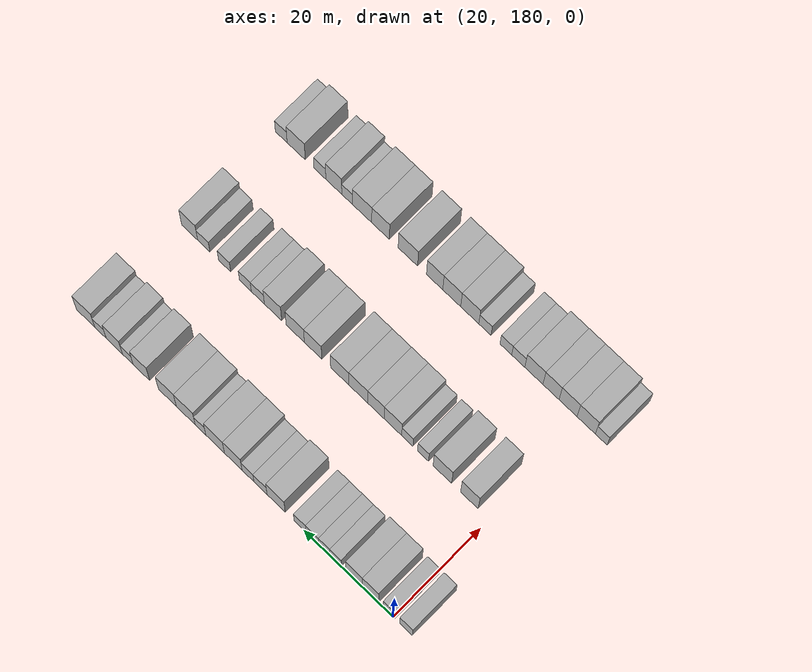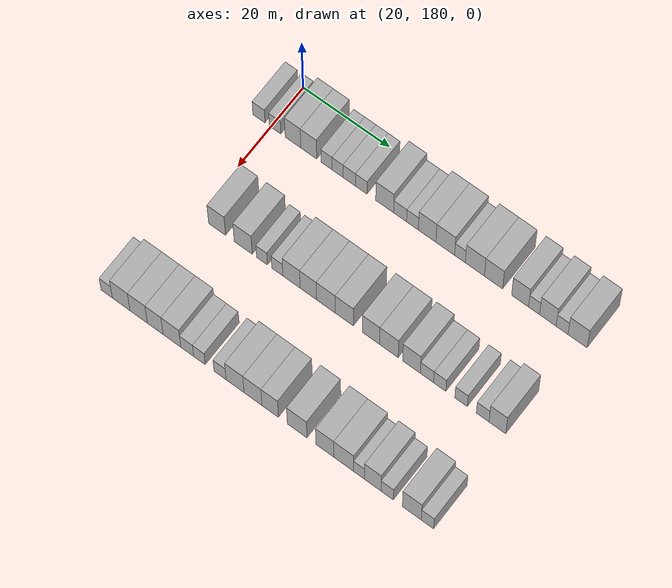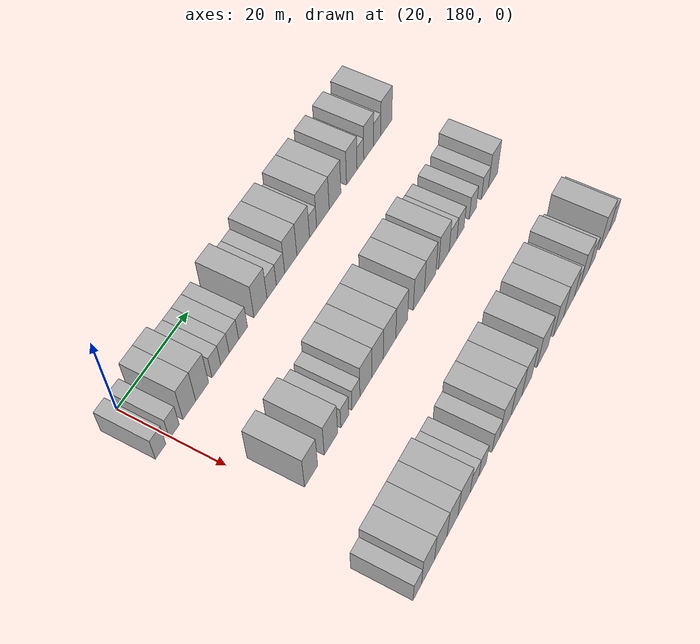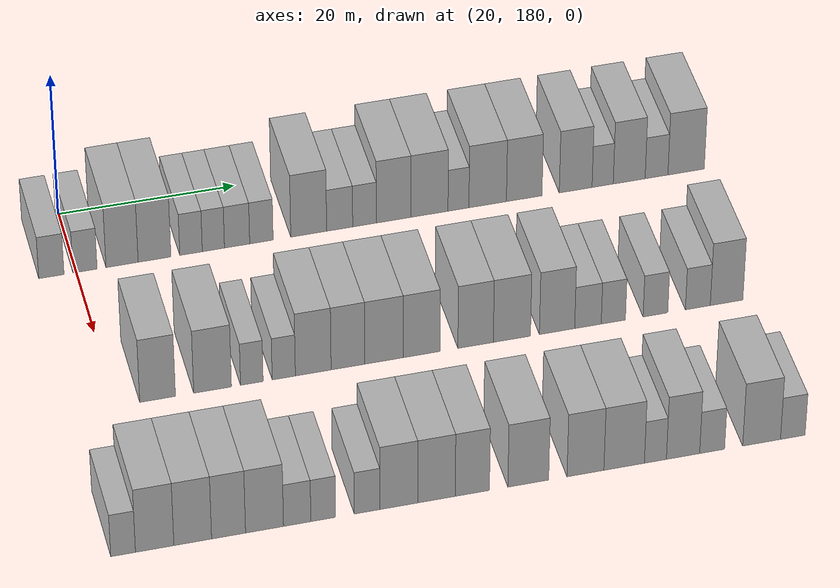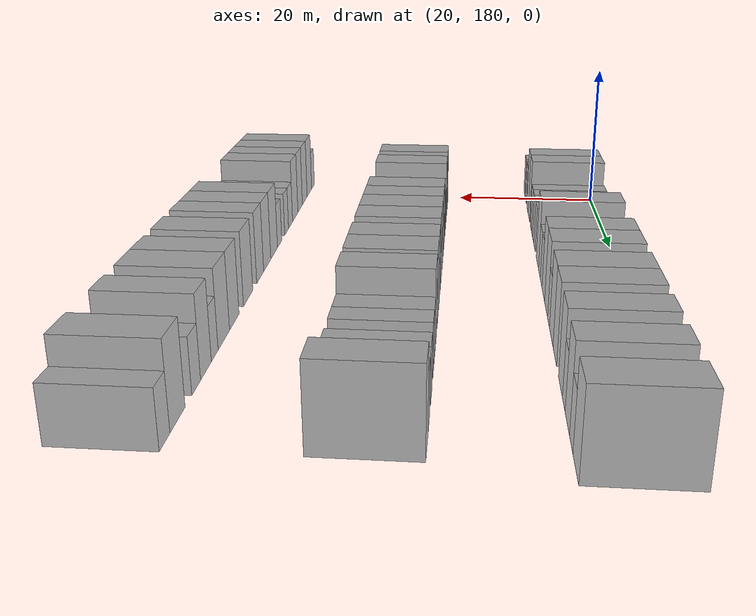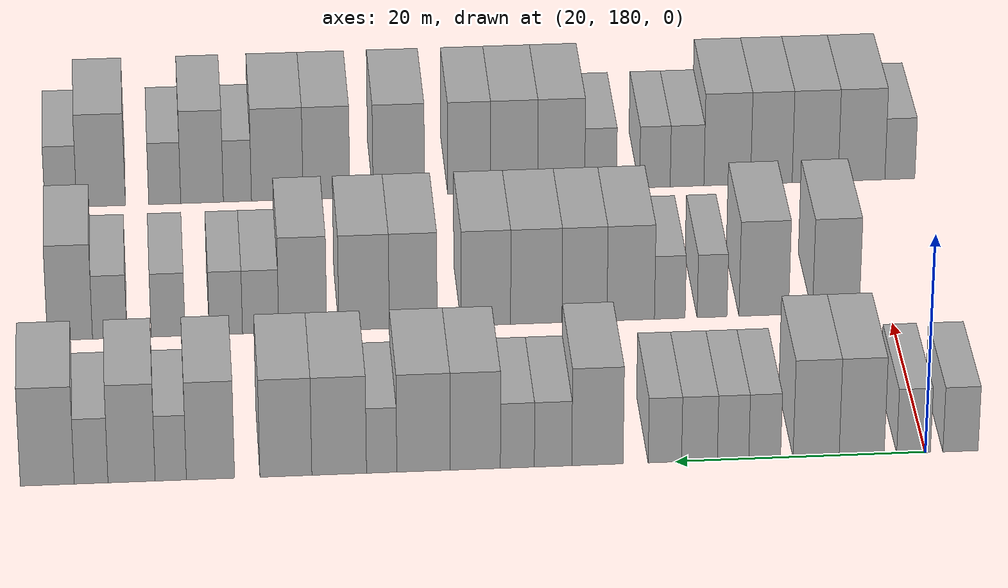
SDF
<sdf version="1.6">
 <world name="default">
  <model name="building_114">
   <static>1</static>
   <pose>25.0000 177.2299 0 0.000000 0.000000 0.000000</pose>
   <link name="link">
    <pose>0 0 3.00 0 0 0</pose>
    <collision name="collision"><geometry><box><size>10.0000 2.8217 6.0000</size></box></geometry></collision>
    <visual name="visual">
     <cast_shadows>0</cast_shadows>
     <geometry><box><size>10.0000 2.8217 6.0000</size></box></geometry>
     <material>
      <script>
       <uri>model://HANNAS_wall/materials/scripts</uri>
       <uri>model://HANNAS_wall/materials/textures</uri>
       <name>vrc/HANNAS_wall</name>
      </script>
     </material>
    </visual>
   </link>
  </model>
  <model name="building_115">
   <static>1</static>
   <pose>25.0000 180.9914 0 0.000000 0.000000 0.000000</pose>
   <link name="link">
    <pose>0 0 3.00 0 0 0</pose>
    <collision name="collision"><geometry><box><size>10.0000 2.7013 6.0000</size></box></geometry></collision>
    <visual name="visual">
     <cast_shadows>0</cast_shadows>
     <geometry><box><size>10.0000 2.7013 6.0000</size></box></geometry>
     <material>
      <script>
       <uri>model://HANNAS_wall/materials/scripts</uri>
       <uri>model://HANNAS_wall/materials/textures</uri>
       <name>vrc/HANNAS_wall</name>
      </script>
     </material>
    </visual>
   </link>
  </model>
  <model name="building_116">
   <static>1</static>
   <pose>25.0000 185.1468 0 0.000000 0.000000 0.000000</pose>
   <link name="link">
    <pose>0 0 4.50 0 0 0</pose>
    <collision name="collision"><geometry><box><size>10.0000 3.6094 9.0000</size></box></geometry></collision>
    <visual name="visual">
     <cast_shadows>0</cast_shadows>
     <geometry><box><size>10.0000 3.6094 9.0000</size></box></geometry>
     <material>
      <script>
       <uri>model://HANNAS_wall/materials/scripts</uri>
       <uri>model://HANNAS_wall/materials/textures</uri>
       <name>vrc/HANNAS_wall</name>
      </script>
     </material>
    </visual>
   </link>
  </model>
  <model name="building_117">
   <static>1</static>
   <pose>25.0000 188.7937 0 0.000000 0.000000 0.000000</pose>
   <link name="link">
    <pose>0 0 4.50 0 0 0</pose>
    <collision name="collision"><geometry><box><size>10.0000 3.6845 9.0000</size></box></geometry></collision>
    <visual name="visual">
     <cast_shadows>0</cast_shadows>
     <geometry><box><size>10.0000 3.6845 9.0000</size></box></geometry>
     <material>
      <script>
       <uri>model://HANNAS_wall/materials/scripts</uri>
       <uri>model://HANNAS_wall/materials/textures</uri>
       <name>vrc/HANNAS_wall</name>
      </script>
     </material>
    </visual>
   </link>
  </model>
  <model name="building_118">
   <static>1</static>
   <pose>25.0000 192.9074 0 0.000000 0.000000 0.000000</pose>
   <link name="link">
    <pose>0 0 3.00 0 0 0</pose>
    <collision name="collision"><geometry><box><size>10.0000 2.5429 6.0000</size></box></geometry></collision>
    <visual name="visual">
     <cast_shadows>0</cast_shadows>
     <geometry><box><size>10.0000 2.5429 6.0000</size></box></geometry>
     <material>
      <script>
       <uri>model://HANNAS_wall/materials/scripts</uri>
       <uri>model://HANNAS_wall/materials/textures</uri>
       <name>vrc/HANNAS_wall</name>
      </script>
     </material>
    </visual>
   </link>
  </model>
  <model name="building_119">
   <static>1</static>
   <pose>25.0000 195.4322 0 0.000000 0.000000 0.000000</pose>
   <link name="link">
    <pose>0 0 3.00 0 0 0</pose>
    <collision name="collision"><geometry><box><size>10.0000 2.5067 6.0000</size></box></geometry></collision>
    <visual name="visual">
     <cast_shadows>0</cast_shadows>
     <geometry><box><size>10.0000 2.5067 6.0000</size></box></geometry>
     <material>
      <script>
       <uri>model://HANNAS_wall/materials/scripts</uri>
       <uri>model://HANNAS_wall/materials/textures</uri>
       <name>vrc/HANNAS_wall</name>
      </script>
     </material>
    </visual>
   </link>
  </model>
  <model name="building_120">
   <static>1</static>
   <pose>25.0000 198.1139 0 0.000000 0.000000 0.000000</pose>
   <link name="link">
    <pose>0 0 3.00 0 0 0</pose>
    <collision name="collision"><geometry><box><size>10.0000 2.8567 6.0000</size></box></geometry></collision>
    <visual name="visual">
     <cast_shadows>0</cast_shadows>
     <geometry><box><size>10.0000 2.8567 6.0000</size></box></geometry>
     <material>
      <script>
       <uri>model://HANNAS_wall/materials/scripts</uri>
       <uri>model://HANNAS_wall/materials/textures</uri>
       <name>vrc/HANNAS_wall</name>
      </script>
     </material>
    </visual>
   </link>
  </model>
  <model name="building_121">
   <static>1</static>
   <pose>25.0000 200.8717 0 0.000000 0.000000 0.000000</pose>
   <link name="link">
    <pose>0 0 3.00 0 0 0</pose>
    <collision name="collision"><geometry><box><size>10.0000 2.6587 6.0000</size></box></geometry></collision>
    <visual name="visual">
     <cast_shadows>0</cast_shadows>
     <geometry><box><size>10.0000 2.6587 6.0000</size></box></geometry>
     <material>
      <script>
       <uri>model://HANNAS_wall/materials/scripts</uri>
       <uri>model://HANNAS_wall/materials/textures</uri>
       <name>vrc/HANNAS_wall</name>
      </script>
     </material>
    </visual>
   </link>
  </model>
  <model name="building_122">
   <static>1</static>
   <pose>25.0000 206.2416 0 0.000000 0.000000 0.000000</pose>
   <link name="link">
    <pose>0 0 4.50 0 0 0</pose>
    <collision name="collision"><geometry><box><size>10.0000 4.0811 9.0000</size></box></geometry></collision>
    <visual name="visual">
     <cast_shadows>0</cast_shadows>
     <geometry><box><size>10.0000 4.0811 9.0000</size></box></geometry>
     <material>
      <script>
       <uri>model://HANNAS_wall/materials/scripts</uri>
       <uri>model://HANNAS_wall/materials/textures</uri>
       <name>vrc/HANNAS_wall</name>
      </script>
     </material>
    </visual>
   </link>
  </model>
  <model name="building_123">
   <static>1</static>
   <pose>25.0000 209.7693 0 0.000000 0.000000 0.000000</pose>
   <link name="link">
    <pose>0 0 3.00 0 0 0</pose>
    <collision name="collision"><geometry><box><size>10.0000 2.9743 6.0000</size></box></geometry></collision>
    <visual name="visual">
     <cast_shadows>0</cast_shadows>
     <geometry><box><size>10.0000 2.9743 6.0000</size></box></geometry>
     <material>
      <script>
       <uri>model://HANNAS_wall/materials/scripts</uri>
       <uri>model://HANNAS_wall/materials/textures</uri>
       <name>vrc/HANNAS_wall</name>
      </script>
     </material>
    </visual>
   </link>
  </model>
  <model name="building_124">
   <static>1</static>
   <pose>25.0000 212.6050 0 0.000000 0.000000 0.000000</pose>
   <link name="link">
    <pose>0 0 3.00 0 0 0</pose>
    <collision name="collision"><geometry><box><size>10.0000 2.6970 6.0000</size></box></geometry></collision>
    <visual name="visual">
     <cast_shadows>0</cast_shadows>
     <geometry><box><size>10.0000 2.6970 6.0000</size></box></geometry>
     <material>
      <script>
       <uri>model://HANNAS_wall/materials/scripts</uri>
       <uri>model://HANNAS_wall/materials/textures</uri>
       <name>vrc/HANNAS_wall</name>
      </script>
     </material>
    </visual>
   </link>
  </model>
  <model name="building_125">
   <static>1</static>
   <pose>25.0000 215.9416 0 0.000000 0.000000 0.000000</pose>
   <link name="link">
    <pose>0 0 4.50 0 0 0</pose>
    <collision name="collision"><geometry><box><size>10.0000 3.9762 9.0000</size></box></geometry></collision>
    <visual name="visual">
     <cast_shadows>0</cast_shadows>
     <geometry><box><size>10.0000 3.9762 9.0000</size></box></geometry>
     <material>
      <script>
       <uri>model://HANNAS_wall/materials/scripts</uri>
       <uri>model://HANNAS_wall/materials/textures</uri>
       <name>vrc/HANNAS_wall</name>
      </script>
     </material>
    </visual>
   </link>
  </model>
  <model name="building_126">
   <static>1</static>
   <pose>25.0000 220.0505 0 0.000000 0.000000 0.000000</pose>
   <link name="link">
    <pose>0 0 4.50 0 0 0</pose>
    <collision name="collision"><geometry><box><size>10.0000 4.2416 9.0000</size></box></geometry></collision>
    <visual name="visual">
     <cast_shadows>0</cast_shadows>
     <geometry><box><size>10.0000 4.2416 9.0000</size></box></geometry>
     <material>
      <script>
       <uri>model://HANNAS_wall/materials/scripts</uri>
       <uri>model://HANNAS_wall/materials/textures</uri>
       <name>vrc/HANNAS_wall</name>
      </script>
     </material>
    </visual>
   </link>
  </model>
  <model name="building_127">
   <static>1</static>
   <pose>25.0000 223.3737 0 0.000000 0.000000 0.000000</pose>
   <link name="link">
    <pose>0 0 3.00 0 0 0</pose>
    <collision name="collision"><geometry><box><size>10.0000 2.4049 6.0000</size></box></geometry></collision>
    <visual name="visual">
     <cast_shadows>0</cast_shadows>
     <geometry><box><size>10.0000 2.4049 6.0000</size></box></geometry>
     <material>
      <script>
       <uri>model://HANNAS_wall/materials/scripts</uri>
       <uri>model://HANNAS_wall/materials/textures</uri>
       <name>vrc/HANNAS_wall</name>
      </script>
     </material>
    </visual>
   </link>
  </model>
  <model name="building_128">
   <static>1</static>
   <pose>25.0000 226.7390 0 0.000000 0.000000 0.000000</pose>
   <link name="link">
    <pose>0 0 4.50 0 0 0</pose>
    <collision name="collision"><geometry><box><size>10.0000 4.3258 9.0000</size></box></geometry></collision>
    <visual name="visual">
     <cast_shadows>0</cast_shadows>
     <geometry><box><size>10.0000 4.3258 9.0000</size></box></geometry>
     <material>
      <script>
       <uri>model://HANNAS_wall/materials/scripts</uri>
       <uri>model://HANNAS_wall/materials/textures</uri>
       <name>vrc/HANNAS_wall</name>
      </script>
     </material>
    </visual>
   </link>
  </model>
  <model name="building_129">
   <static>1</static>
   <pose>25.0000 230.9556 0 0.000000 0.000000 0.000000</pose>
   <link name="link">
    <pose>0 0 4.50 0 0 0</pose>
    <collision name="collision"><geometry><box><size>10.0000 4.1074 9.0000</size></box></geometry></collision>
    <visual name="visual">
     <cast_shadows>0</cast_shadows>
     <geometry><box><size>10.0000 4.1074 9.0000</size></box></geometry>
     <material>
      <script>
       <uri>model://HANNAS_wall/materials/scripts</uri>
       <uri>model://HANNAS_wall/materials/textures</uri>
       <name>vrc/HANNAS_wall</name>
      </script>
     </material>
    </visual>
   </link>
  </model>
  <model name="building_130">
   <static>1</static>
   <pose>25.0000 236.9119 0 0.000000 0.000000 0.000000</pose>
   <link name="link">
    <pose>0 0 4.50 0 0 0</pose>
    <collision name="collision"><geometry><box><size>10.0000 3.8053 9.0000</size></box></geometry></collision>
    <visual name="visual">
     <cast_shadows>0</cast_shadows>
     <geometry><box><size>10.0000 3.8053 9.0000</size></box></geometry>
     <material>
      <script>
       <uri>model://HANNAS_wall/materials/scripts</uri>
       <uri>model://HANNAS_wall/materials/textures</uri>
       <name>vrc/HANNAS_wall</name>
      </script>
     </material>
    </visual>
   </link>
  </model>
  <model name="building_131">
   <static>1</static>
   <pose>25.0000 240.0457 0 0.000000 0.000000 0.000000</pose>
   <link name="link">
    <pose>0 0 3.00 0 0 0</pose>
    <collision name="collision"><geometry><box><size>10.0000 2.4624 6.0000</size></box></geometry></collision>
    <visual name="visual">
     <cast_shadows>0</cast_shadows>
     <geometry><box><size>10.0000 2.4624 6.0000</size></box></geometry>
     <material>
      <script>
       <uri>model://HANNAS_wall/materials/scripts</uri>
       <uri>model://HANNAS_wall/materials/textures</uri>
       <name>vrc/HANNAS_wall</name>
      </script>
     </material>
    </visual>
   </link>
  </model>
  <model name="building_132">
   <static>1</static>
   <pose>25.0000 243.1356 0 0.000000 0.000000 0.000000</pose>
   <link name="link">
    <pose>0 0 4.50 0 0 0</pose>
    <collision name="collision"><geometry><box><size>10.0000 3.7173 9.0000</size></box></geometry></collision>
    <visual name="visual">
     <cast_shadows>0</cast_shadows>
     <geometry><box><size>10.0000 3.7173 9.0000</size></box></geometry>
     <material>
      <script>
       <uri>model://HANNAS_wall/materials/scripts</uri>
       <uri>model://HANNAS_wall/materials/textures</uri>
       <name>vrc/HANNAS_wall</name>
      </script>
     </material>
    </visual>
   </link>
  </model>
  <model name="building_133">
   <static>1</static>
   <pose>25.0000 246.3217 0 0.000000 0.000000 0.000000</pose>
   <link name="link">
    <pose>0 0 3.00 0 0 0</pose>
    <collision name="collision"><geometry><box><size>10.0000 2.6550 6.0000</size></box></geometry></collision>
    <visual name="visual">
     <cast_shadows>0</cast_shadows>
     <geometry><box><size>10.0000 2.6550 6.0000</size></box></geometry>
     <material>
      <script>
       <uri>model://HANNAS_wall/materials/scripts</uri>
       <uri>model://HANNAS_wall/materials/textures</uri>
       <name>vrc/HANNAS_wall</name>
      </script>
     </material>
    </visual>
   </link>
  </model>
  <model name="building_134">
   <static>1</static>
   <pose>25.0000 249.7720 0 0.000000 0.000000 0.000000</pose>
   <link name="link">
    <pose>0 0 4.50 0 0 0</pose>
    <collision name="collision"><geometry><box><size>10.0000 4.2457 9.0000</size></box></geometry></collision>
    <visual name="visual">
     <cast_shadows>0</cast_shadows>
     <geometry><box><size>10.0000 4.2457 9.0000</size></box></geometry>
     <material>
      <script>
       <uri>model://HANNAS_wall/materials/scripts</uri>
       <uri>model://HANNAS_wall/materials/textures</uri>
       <name>vrc/HANNAS_wall</name>
      </script>
     </material>
    </visual>
   </link>
  </model>
  <model name="building_232">
   <static>1</static>
   <pose>47.0000 184.4895 0 0.000000 0.000000 0.000000</pose>
   <link name="link">
    <pose>0 0 4.50 0 0 0</pose>
    <collision name="collision"><geometry><box><size>10.0000 3.9055 9.0000</size></box></geometry></collision>
    <visual name="visual">
     <cast_shadows>0</cast_shadows>
     <geometry><box><size>10.0000 3.9055 9.0000</size></box></geometry>
     <material>
      <script>
       <uri>model://HANNAS_wall/materials/scripts</uri>
       <uri>model://HANNAS_wall/materials/textures</uri>
       <name>vrc/HANNAS_wall</name>
      </script>
     </material>
    </visual>
   </link>
  </model>
  <model name="building_233">
   <static>1</static>
   <pose>47.0000 190.5099 0 0.000000 0.000000 0.000000</pose>
   <link name="link">
    <pose>0 0 4.50 0 0 0</pose>
    <collision name="collision"><geometry><box><size>10.0000 4.1352 9.0000</size></box></geometry></collision>
    <visual name="visual">
     <cast_shadows>0</cast_shadows>
     <geometry><box><size>10.0000 4.1352 9.0000</size></box></geometry>
     <material>
      <script>
       <uri>model://HANNAS_wall/materials/scripts</uri>
       <uri>model://HANNAS_wall/materials/textures</uri>
       <name>vrc/HANNAS_wall</name>
      </script>
     </material>
    </visual>
   </link>
  </model>
  <model name="building_234">
   <static>1</static>
   <pose>47.0000 194.8201 0 0.000000 0.000000 0.000000</pose>
   <link name="link">
    <pose>0 0 3.00 0 0 0</pose>
    <collision name="collision"><geometry><box><size>10.0000 2.4851 6.0000</size></box></geometry></collision>
    <visual name="visual">
     <cast_shadows>0</cast_shadows>
     <geometry><box><size>10.0000 2.4851 6.0000</size></box></geometry>
     <material>
      <script>
       <uri>model://HANNAS_wall/materials/scripts</uri>
       <uri>model://HANNAS_wall/materials/textures</uri>
       <name>vrc/HANNAS_wall</name>
      </script>
     </material>
    </visual>
   </link>
  </model>
  <model name="building_235">
   <static>1</static>
   <pose>47.0000 198.3404 0 0.000000 0.000000 0.000000</pose>
   <link name="link">
    <pose>0 0 3.00 0 0 0</pose>
    <collision name="collision"><geometry><box><size>10.0000 2.5553 6.0000</size></box></geometry></collision>
    <visual name="visual">
     <cast_shadows>0</cast_shadows>
     <geometry><box><size>10.0000 2.5553 6.0000</size></box></geometry>
     <material>
      <script>
       <uri>model://HANNAS_wall/materials/scripts</uri>
       <uri>model://HANNAS_wall/materials/textures</uri>
       <name>vrc/HANNAS_wall</name>
      </script>
     </material>
    </visual>
   </link>
  </model>
  <model name="building_236">
   <static>1</static>
   <pose>47.0000 201.5911 0 0.000000 0.000000 0.000000</pose>
   <link name="link">
    <pose>0 0 4.50 0 0 0</pose>
    <collision name="collision"><geometry><box><size>10.0000 3.9463 9.0000</size></box></geometry></collision>
    <visual name="visual">
     <cast_shadows>0</cast_shadows>
     <geometry><box><size>10.0000 3.9463 9.0000</size></box></geometry>
     <material>
      <script>
       <uri>model://HANNAS_wall/materials/scripts</uri>
       <uri>model://HANNAS_wall/materials/textures</uri>
       <name>vrc/HANNAS_wall</name>
      </script>
     </material>
    </visual>
   </link>
  </model>
  <model name="building_237">
   <static>1</static>
   <pose>47.0000 205.4345 0 0.000000 0.000000 0.000000</pose>
   <link name="link">
    <pose>0 0 4.50 0 0 0</pose>
    <collision name="collision"><geometry><box><size>10.0000 3.7404 9.0000</size></box></geometry></collision>
    <visual name="visual">
     <cast_shadows>0</cast_shadows>
     <geometry><box><size>10.0000 3.7404 9.0000</size></box></geometry>
     <material>
      <script>
       <uri>model://HANNAS_wall/materials/scripts</uri>
       <uri>model://HANNAS_wall/materials/textures</uri>
       <name>vrc/HANNAS_wall</name>
      </script>
     </material>
    </visual>
   </link>
  </model>
  <model name="building_238">
   <static>1</static>
   <pose>47.0000 209.4332 0 0.000000 0.000000 0.000000</pose>
   <link name="link">
    <pose>0 0 4.50 0 0 0</pose>
    <collision name="collision"><geometry><box><size>10.0000 4.2571 9.0000</size></box></geometry></collision>
    <visual name="visual">
     <cast_shadows>0</cast_shadows>
     <geometry><box><size>10.0000 4.2571 9.0000</size></box></geometry>
     <material>
      <script>
       <uri>model://HANNAS_wall/materials/scripts</uri>
       <uri>model://HANNAS_wall/materials/textures</uri>
       <name>vrc/HANNAS_wall</name>
      </script>
     </material>
    </visual>
   </link>
  </model>
  <model name="building_239">
   <static>1</static>
   <pose>47.0000 213.6060 0 0.000000 0.000000 0.000000</pose>
   <link name="link">
    <pose>0 0 4.50 0 0 0</pose>
    <collision name="collision"><geometry><box><size>10.0000 4.0884 9.0000</size></box></geometry></collision>
    <visual name="visual">
     <cast_shadows>0</cast_shadows>
     <geometry><box><size>10.0000 4.0884 9.0000</size></box></geometry>
     <material>
      <script>
       <uri>model://HANNAS_wall/materials/scripts</uri>
       <uri>model://HANNAS_wall/materials/textures</uri>
       <name>vrc/HANNAS_wall</name>
      </script>
     </material>
    </visual>
   </link>
  </model>
  <model name="building_240">
   <static>1</static>
   <pose>47.0000 219.6310 0 0.000000 0.000000 0.000000</pose>
   <link name="link">
    <pose>0 0 4.50 0 0 0</pose>
    <collision name="collision"><geometry><box><size>10.0000 3.9615 9.0000</size></box></geometry></collision>
    <visual name="visual">
     <cast_shadows>0</cast_shadows>
     <geometry><box><size>10.0000 3.9615 9.0000</size></box></geometry>
     <material>
      <script>
       <uri>model://HANNAS_wall/materials/scripts</uri>
       <uri>model://HANNAS_wall/materials/textures</uri>
       <name>vrc/HANNAS_wall</name>
      </script>
     </material>
    </visual>
   </link>
  </model>
  <model name="building_241">
   <static>1</static>
   <pose>47.0000 223.6928 0 0.000000 0.000000 0.000000</pose>
   <link name="link">
    <pose>0 0 4.50 0 0 0</pose>
    <collision name="collision"><geometry><box><size>10.0000 4.1621 9.0000</size></box></geometry></collision>
    <visual name="visual">
     <cast_shadows>0</cast_shadows>
     <geometry><box><size>10.0000 4.1621 9.0000</size></box></geometry>
     <material>
      <script>
       <uri>model://HANNAS_wall/materials/scripts</uri>
       <uri>model://HANNAS_wall/materials/textures</uri>
       <name>vrc/HANNAS_wall</name>
      </script>
     </material>
    </visual>
   </link>
  </model>
  <model name="building_242">
   <static>1</static>
   <pose>47.0000 228.7574 0 0.000000 0.000000 0.000000</pose>
   <link name="link">
    <pose>0 0 4.50 0 0 0</pose>
    <collision name="collision"><geometry><box><size>10.0000 3.9670 9.0000</size></box></geometry></collision>
    <visual name="visual">
     <cast_shadows>0</cast_shadows>
     <geometry><box><size>10.0000 3.9670 9.0000</size></box></geometry>
     <material>
      <script>
       <uri>model://HANNAS_wall/materials/scripts</uri>
       <uri>model://HANNAS_wall/materials/textures</uri>
       <name>vrc/HANNAS_wall</name>
      </script>
     </material>
    </visual>
   </link>
  </model>
  <model name="building_243">
   <static>1</static>
   <pose>47.0000 232.2382 0 0.000000 0.000000 0.000000</pose>
   <link name="link">
    <pose>0 0 3.00 0 0 0</pose>
    <collision name="collision"><geometry><box><size>10.0000 2.9946 6.0000</size></box></geometry></collision>
    <visual name="visual">
     <cast_shadows>0</cast_shadows>
     <geometry><box><size>10.0000 2.9946 6.0000</size></box></geometry>
     <material>
      <script>
       <uri>model://HANNAS_wall/materials/scripts</uri>
       <uri>model://HANNAS_wall/materials/textures</uri>
       <name>vrc/HANNAS_wall</name>
      </script>
     </material>
    </visual>
   </link>
  </model>
  <model name="building_244">
   <static>1</static>
   <pose>47.0000 235.0992 0 0.000000 0.000000 0.000000</pose>
   <link name="link">
    <pose>0 0 3.00 0 0 0</pose>
    <collision name="collision"><geometry><box><size>10.0000 2.7275 6.0000</size></box></geometry></collision>
    <visual name="visual">
     <cast_shadows>0</cast_shadows>
     <geometry><box><size>10.0000 2.7275 6.0000</size></box></geometry>
     <material>
      <script>
       <uri>model://HANNAS_wall/materials/scripts</uri>
       <uri>model://HANNAS_wall/materials/textures</uri>
       <name>vrc/HANNAS_wall</name>
      </script>
     </material>
    </visual>
   </link>
  </model>
  <model name="building_245">
   <static>1</static>
   <pose>47.0000 239.8606 0 0.000000 0.000000 0.000000</pose>
   <link name="link">
    <pose>0 0 3.00 0 0 0</pose>
    <collision name="collision"><geometry><box><size>10.0000 2.7951 6.0000</size></box></geometry></collision>
    <visual name="visual">
     <cast_shadows>0</cast_shadows>
     <geometry><box><size>10.0000 2.7951 6.0000</size></box></geometry>
     <material>
      <script>
       <uri>model://HANNAS_wall/materials/scripts</uri>
       <uri>model://HANNAS_wall/materials/textures</uri>
       <name>vrc/HANNAS_wall</name>
      </script>
     </material>
    </visual>
   </link>
  </model>
  <model name="building_246">
   <static>1</static>
   <pose>47.0000 244.6729 0 0.000000 0.000000 0.000000</pose>
   <link name="link">
    <pose>0 0 3.00 0 0 0</pose>
    <collision name="collision"><geometry><box><size>10.0000 2.8296 6.0000</size></box></geometry></collision>
    <visual name="visual">
     <cast_shadows>0</cast_shadows>
     <geometry><box><size>10.0000 2.8296 6.0000</size></box></geometry>
     <material>
      <script>
       <uri>model://HANNAS_wall/materials/scripts</uri>
       <uri>model://HANNAS_wall/materials/textures</uri>
       <name>vrc/HANNAS_wall</name>
      </script>
     </material>
    </visual>
   </link>
  </model>
  <model name="building_247">
   <static>1</static>
   <pose>47.0000 247.9388 0 0.000000 0.000000 0.000000</pose>
   <link name="link">
    <pose>0 0 4.50 0 0 0</pose>
    <collision name="collision"><geometry><box><size>10.0000 3.7022 9.0000</size></box></geometry></collision>
    <visual name="visual">
     <cast_shadows>0</cast_shadows>
     <geometry><box><size>10.0000 3.7022 9.0000</size></box></geometry>
     <material>
      <script>
       <uri>model://HANNAS_wall/materials/scripts</uri>
       <uri>model://HANNAS_wall/materials/textures</uri>
       <name>vrc/HANNAS_wall</name>
      </script>
     </material>
    </visual>
   </link>
  </model>
  <model name="building_355">
   <static>1</static>
   <pose>69.0000 176.1963 0 0.000000 0.000000 0.000000</pose>
   <link name="link">
    <pose>0 0 3.00 0 0 0</pose>
    <collision name="collision"><geometry><box><size>10.0000 2.6148 6.0000</size></box></geometry></collision>
    <visual name="visual">
     <cast_shadows>0</cast_shadows>
     <geometry><box><size>10.0000 2.6148 6.0000</size></box></geometry>
     <material>
      <script>
       <uri>model://HANNAS_wall/materials/scripts</uri>
       <uri>model://HANNAS_wall/materials/textures</uri>
       <name>vrc/HANNAS_wall</name>
      </script>
     </material>
    </visual>
   </link>
  </model>
  <model name="building_356">
   <static>1</static>
   <pose>69.0000 179.5372 0 0.000000 0.000000 0.000000</pose>
   <link name="link">
    <pose>0 0 4.50 0 0 0</pose>
    <collision name="collision"><geometry><box><size>10.0000 4.0669 9.0000</size></box></geometry></collision>
    <visual name="visual">
     <cast_shadows>0</cast_shadows>
     <geometry><box><size>10.0000 4.0669 9.0000</size></box></geometry>
     <material>
      <script>
       <uri>model://HANNAS_wall/materials/scripts</uri>
       <uri>model://HANNAS_wall/materials/textures</uri>
       <name>vrc/HANNAS_wall</name>
      </script>
     </material>
    </visual>
   </link>
  </model>
  <model name="building_357">
   <static>1</static>
   <pose>69.0000 183.5724 0 0.000000 0.000000 0.000000</pose>
   <link name="link">
    <pose>0 0 4.50 0 0 0</pose>
    <collision name="collision"><geometry><box><size>10.0000 4.0037 9.0000</size></box></geometry></collision>
    <visual name="visual">
     <cast_shadows>0</cast_shadows>
     <geometry><box><size>10.0000 4.0037 9.0000</size></box></geometry>
     <material>
      <script>
       <uri>model://HANNAS_wall/materials/scripts</uri>
       <uri>model://HANNAS_wall/materials/textures</uri>
       <name>vrc/HANNAS_wall</name>
      </script>
     </material>
    </visual>
   </link>
  </model>
  <model name="building_358">
   <static>1</static>
   <pose>69.0000 187.3822 0 0.000000 0.000000 0.000000</pose>
   <link name="link">
    <pose>0 0 4.50 0 0 0</pose>
    <collision name="collision"><geometry><box><size>10.0000 3.6160 9.0000</size></box></geometry></collision>
    <visual name="visual">
     <cast_shadows>0</cast_shadows>
     <geometry><box><size>10.0000 3.6160 9.0000</size></box></geometry>
     <material>
      <script>
       <uri>model://HANNAS_wall/materials/scripts</uri>
       <uri>model://HANNAS_wall/materials/textures</uri>
       <name>vrc/HANNAS_wall</name>
      </script>
     </material>
    </visual>
   </link>
  </model>
  <model name="building_359">
   <static>1</static>
   <pose>69.0000 191.2171 0 0.000000 0.000000 0.000000</pose>
   <link name="link">
    <pose>0 0 4.50 0 0 0</pose>
    <collision name="collision"><geometry><box><size>10.0000 4.0538 9.0000</size></box></geometry></collision>
    <visual name="visual">
     <cast_shadows>0</cast_shadows>
     <geometry><box><size>10.0000 4.0538 9.0000</size></box></geometry>
     <material>
      <script>
       <uri>model://HANNAS_wall/materials/scripts</uri>
       <uri>model://HANNAS_wall/materials/textures</uri>
       <name>vrc/HANNAS_wall</name>
      </script>
     </material>
    </visual>
   </link>
  </model>
  <model name="building_360">
   <static>1</static>
   <pose>69.0000 194.7058 0 0.000000 0.000000 0.000000</pose>
   <link name="link">
    <pose>0 0 3.00 0 0 0</pose>
    <collision name="collision"><geometry><box><size>10.0000 2.9237 6.0000</size></box></geometry></collision>
    <visual name="visual">
     <cast_shadows>0</cast_shadows>
     <geometry><box><size>10.0000 2.9237 6.0000</size></box></geometry>
     <material>
      <script>
       <uri>model://HANNAS_wall/materials/scripts</uri>
       <uri>model://HANNAS_wall/materials/textures</uri>
       <name>vrc/HANNAS_wall</name>
      </script>
     </material>
    </visual>
   </link>
  </model>
  <model name="building_361">
   <static>1</static>
   <pose>69.0000 197.4939 0 0.000000 0.000000 0.000000</pose>
   <link name="link">
    <pose>0 0 3.00 0 0 0</pose>
    <collision name="collision"><geometry><box><size>10.0000 2.6524 6.0000</size></box></geometry></collision>
    <visual name="visual">
     <cast_shadows>0</cast_shadows>
     <geometry><box><size>10.0000 2.6524 6.0000</size></box></geometry>
     <material>
      <script>
       <uri>model://HANNAS_wall/materials/scripts</uri>
       <uri>model://HANNAS_wall/materials/textures</uri>
       <name>vrc/HANNAS_wall</name>
      </script>
     </material>
    </visual>
   </link>
  </model>
  <model name="building_362">
   <static>1</static>
   <pose>69.0000 202.1973 0 0.000000 0.000000 0.000000</pose>
   <link name="link">
    <pose>0 0 3.00 0 0 0</pose>
    <collision name="collision"><geometry><box><size>10.0000 2.7544 6.0000</size></box></geometry></collision>
    <visual name="visual">
     <cast_shadows>0</cast_shadows>
     <geometry><box><size>10.0000 2.7544 6.0000</size></box></geometry>
     <material>
      <script>
       <uri>model://HANNAS_wall/materials/scripts</uri>
       <uri>model://HANNAS_wall/materials/textures</uri>
       <name>vrc/HANNAS_wall</name>
      </script>
     </material>
    </visual>
   </link>
  </model>
  <model name="building_363">
   <static>1</static>
   <pose>69.0000 205.6110 0 0.000000 0.000000 0.000000</pose>
   <link name="link">
    <pose>0 0 4.50 0 0 0</pose>
    <collision name="collision"><geometry><box><size>10.0000 4.0729 9.0000</size></box></geometry></collision>
    <visual name="visual">
     <cast_shadows>0</cast_shadows>
     <geometry><box><size>10.0000 4.0729 9.0000</size></box></geometry>
     <material>
      <script>
       <uri>model://HANNAS_wall/materials/scripts</uri>
       <uri>model://HANNAS_wall/materials/textures</uri>
       <name>vrc/HANNAS_wall</name>
      </script>
     </material>
    </visual>
   </link>
  </model>
  <model name="building_364">
   <static>1</static>
   <pose>69.0000 209.6789 0 0.000000 0.000000 0.000000</pose>
   <link name="link">
    <pose>0 0 4.50 0 0 0</pose>
    <collision name="collision"><geometry><box><size>10.0000 4.0629 9.0000</size></box></geometry></collision>
    <visual name="visual">
     <cast_shadows>0</cast_shadows>
     <geometry><box><size>10.0000 4.0629 9.0000</size></box></geometry>
     <material>
      <script>
       <uri>model://HANNAS_wall/materials/scripts</uri>
       <uri>model://HANNAS_wall/materials/textures</uri>
       <name>vrc/HANNAS_wall</name>
      </script>
     </material>
    </visual>
   </link>
  </model>
  <model name="building_365">
   <static>1</static>
   <pose>69.0000 213.5616 0 0.000000 0.000000 0.000000</pose>
   <link name="link">
    <pose>0 0 4.50 0 0 0</pose>
    <collision name="collision"><geometry><box><size>10.0000 3.7024 9.0000</size></box></geometry></collision>
    <visual name="visual">
     <cast_shadows>0</cast_shadows>
     <geometry><box><size>10.0000 3.7024 9.0000</size></box></geometry>
     <material>
      <script>
       <uri>model://HANNAS_wall/materials/scripts</uri>
       <uri>model://HANNAS_wall/materials/textures</uri>
       <name>vrc/HANNAS_wall</name>
      </script>
     </material>
    </visual>
   </link>
  </model>
  <model name="building_366">
   <static>1</static>
   <pose>69.0000 219.6311 0 0.000000 0.000000 0.000000</pose>
   <link name="link">
    <pose>0 0 4.50 0 0 0</pose>
    <collision name="collision"><geometry><box><size>10.0000 4.4367 9.0000</size></box></geometry></collision>
    <visual name="visual">
     <cast_shadows>0</cast_shadows>
     <geometry><box><size>10.0000 4.4367 9.0000</size></box></geometry>
     <material>
      <script>
       <uri>model://HANNAS_wall/materials/scripts</uri>
       <uri>model://HANNAS_wall/materials/textures</uri>
       <name>vrc/HANNAS_wall</name>
      </script>
     </material>
    </visual>
   </link>
  </model>
  <model name="building_367">
   <static>1</static>
   <pose>69.0000 225.8640 0 0.000000 0.000000 0.000000</pose>
   <link name="link">
    <pose>0 0 4.50 0 0 0</pose>
    <collision name="collision"><geometry><box><size>10.0000 4.0290 9.0000</size></box></geometry></collision>
    <visual name="visual">
     <cast_shadows>0</cast_shadows>
     <geometry><box><size>10.0000 4.0290 9.0000</size></box></geometry>
     <material>
      <script>
       <uri>model://HANNAS_wall/materials/scripts</uri>
       <uri>model://HANNAS_wall/materials/textures</uri>
       <name>vrc/HANNAS_wall</name>
      </script>
     </material>
    </visual>
   </link>
  </model>
  <model name="building_368">
   <static>1</static>
   <pose>69.0000 230.0979 0 0.000000 0.000000 0.000000</pose>
   <link name="link">
    <pose>0 0 4.50 0 0 0</pose>
    <collision name="collision"><geometry><box><size>10.0000 4.4389 9.0000</size></box></geometry></collision>
    <visual name="visual">
     <cast_shadows>0</cast_shadows>
     <geometry><box><size>10.0000 4.4389 9.0000</size></box></geometry>
     <material>
      <script>
       <uri>model://HANNAS_wall/materials/scripts</uri>
       <uri>model://HANNAS_wall/materials/textures</uri>
       <name>vrc/HANNAS_wall</name>
      </script>
     </material>
    </visual>
   </link>
  </model>
  <model name="building_369">
   <static>1</static>
   <pose>69.0000 233.5254 0 0.000000 0.000000 0.000000</pose>
   <link name="link">
    <pose>0 0 3.00 0 0 0</pose>
    <collision name="collision"><geometry><box><size>10.0000 2.4159 6.0000</size></box></geometry></collision>
    <visual name="visual">
     <cast_shadows>0</cast_shadows>
     <geometry><box><size>10.0000 2.4159 6.0000</size></box></geometry>
     <material>
      <script>
       <uri>model://HANNAS_wall/materials/scripts</uri>
       <uri>model://HANNAS_wall/materials/textures</uri>
       <name>vrc/HANNAS_wall</name>
      </script>
     </material>
    </visual>
   </link>
  </model>
  <model name="building_370">
   <static>1</static>
   <pose>69.0000 236.5637 0 0.000000 0.000000 0.000000</pose>
   <link name="link">
    <pose>0 0 4.50 0 0 0</pose>
    <collision name="collision"><geometry><box><size>10.0000 3.6607 9.0000</size></box></geometry></collision>
    <visual name="visual">
     <cast_shadows>0</cast_shadows>
     <geometry><box><size>10.0000 3.6607 9.0000</size></box></geometry>
     <material>
      <script>
       <uri>model://HANNAS_wall/materials/scripts</uri>
       <uri>model://HANNAS_wall/materials/textures</uri>
       <name>vrc/HANNAS_wall</name>
      </script>
     </material>
    </visual>
   </link>
  </model>
  <model name="building_371">
   <static>1</static>
   <pose>69.0000 239.7662 0 0.000000 0.000000 0.000000</pose>
   <link name="link">
    <pose>0 0 3.00 0 0 0</pose>
    <collision name="collision"><geometry><box><size>10.0000 2.7444 6.0000</size></box></geometry></collision>
    <visual name="visual">
     <cast_shadows>0</cast_shadows>
     <geometry><box><size>10.0000 2.7444 6.0000</size></box></geometry>
     <material>
      <script>
       <uri>model://HANNAS_wall/materials/scripts</uri>
       <uri>model://HANNAS_wall/materials/textures</uri>
       <name>vrc/HANNAS_wall</name>
      </script>
     </material>
    </visual>
   </link>
  </model>
  <model name="building_372">
   <static>1</static>
   <pose>69.0000 245.2298 0 0.000000 0.000000 0.000000</pose>
   <link name="link">
    <pose>0 0 4.50 0 0 0</pose>
    <collision name="collision"><geometry><box><size>10.0000 4.1827 9.0000</size></box></geometry></collision>
    <visual name="visual">
     <cast_shadows>0</cast_shadows>
     <geometry><box><size>10.0000 4.1827 9.0000</size></box></geometry>
     <material>
      <script>
       <uri>model://HANNAS_wall/materials/scripts</uri>
       <uri>model://HANNAS_wall/materials/textures</uri>
       <name>vrc/HANNAS_wall</name>
      </script>
     </material>
    </visual>
   </link>
  </model>
  <model name="building_373">
   <static>1</static>
   <pose>69.0000 248.6839 0 0.000000 0.000000 0.000000</pose>
   <link name="link">
    <pose>0 0 3.00 0 0 0</pose>
    <collision name="collision"><geometry><box><size>10.0000 2.7254 6.0000</size></box></geometry></collision>
    <visual name="visual">
     <cast_shadows>0</cast_shadows>
     <geometry><box><size>10.0000 2.7254 6.0000</size></box></geometry>
     <material>
      <script>
       <uri>model://HANNAS_wall/materials/scripts</uri>
       <uri>model://HANNAS_wall/materials/textures</uri>
       <name>vrc/HANNAS_wall</name>
      </script>
     </material>
    </visual>
   </link>
  </model>
 </world>
</sdf>
